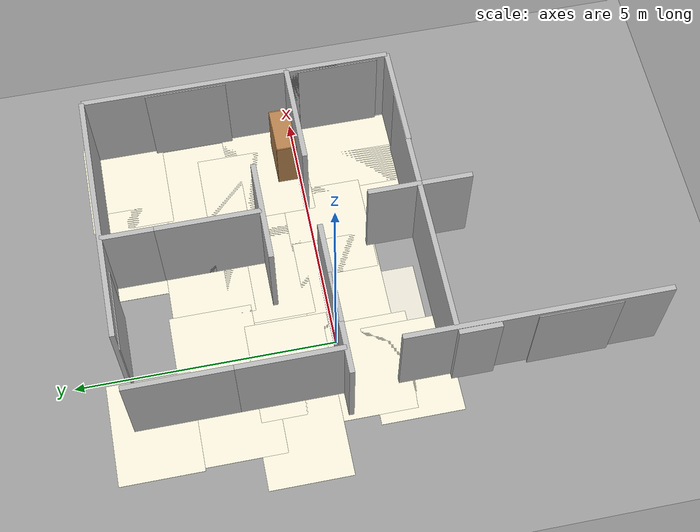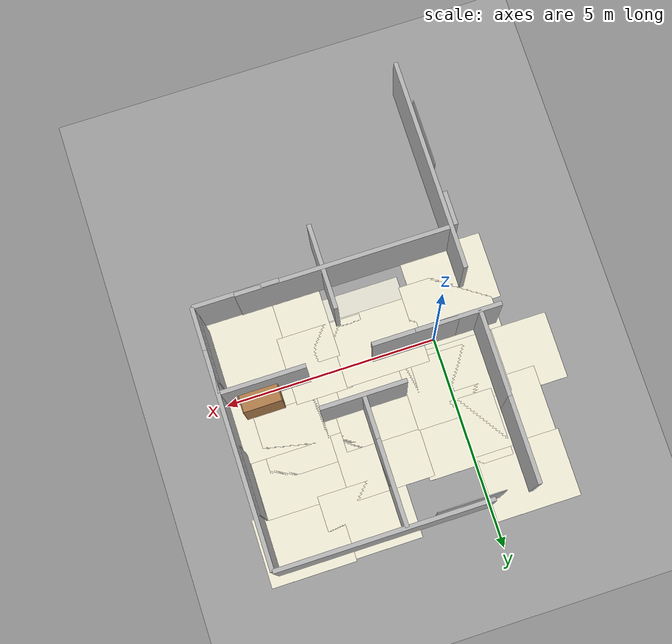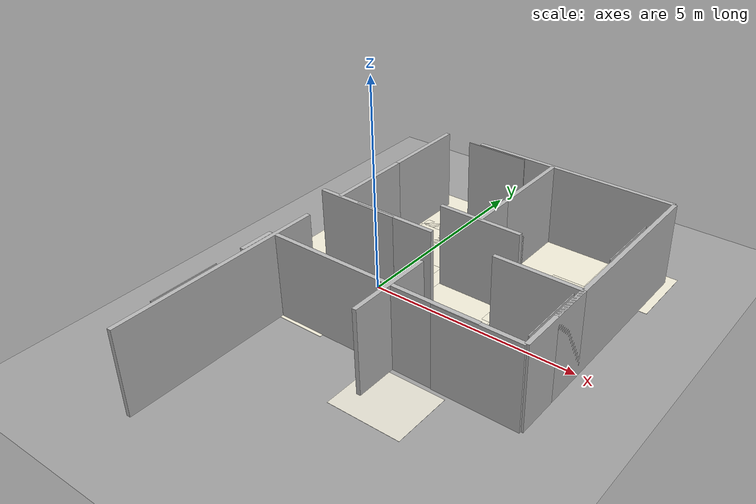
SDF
<sdf version="1.7">
 <world name="default">
  <model name="ground_plane">
   <static>1</static>
   <link name="link">
    <collision name="collision">
     <geometry><plane><normal>0 0 1</normal><size>100 100</size></plane></geometry>
     <surface>
      <contact><collide_bitmask>65535</collide_bitmask></contact>
      <friction><ode><mu>100</mu><mu2>50</mu2></ode></friction>
     </surface>
    </collision>
    <visual name="visual">
     <cast_shadows>0</cast_shadows>
     <geometry><plane><normal>0 0 1</normal><size>1 1</size></plane></geometry>
     <material>
      <script><uri>file://media/materials/scripts/gazebo.material</uri><name>Gazebo/Grey</name></script>
     </material>
    </visual>
   </link>
  </model>
  <model name="Bookshelf">
   <static>1</static>
   <link name="link">
    <inertial><mass>1</mass></inertial>
    <collision name="back">
     <pose>0 0.005 0.6 0 -0 0</pose>
     <geometry><box><size>0.9 0.01 1.2</size></box></geometry>
    </collision>
    <visual name="visual1">
     <pose>0 0.005 0.6 0 -0 0</pose>
     <geometry><box><size>0.9 0.01 1.2</size></box></geometry>
     <material>
      <diffuse>1 1 1 1</diffuse>
      <script><uri>file://media/materials/scripts/gazebo.material</uri><name>Gazebo/Wood</name></script>
      <pbr>
       <metal>
        <albedo_map>https://fuel.ignitionrobotics.org/1.0/openrobotics/models/bookshelf/3/files/bookshelf_diffuse.jpg</albedo_map>
       </metal>
      </pbr>
     </material>
    </visual>
    <collision name="left_side">
     <pose>0.45 -0.195 0.6 0 -0 0</pose>
     <geometry><box><size>0.02 0.4 1.2</size></box></geometry>
    </collision>
    <visual name="visual2">
     <pose>0.45 -0.195 0.6 0 -0 0</pose>
     <geometry><box><size>0.02 0.4 1.2</size></box></geometry>
     <material>
      <diffuse>1 1 1 1</diffuse>
      <script><uri>file://media/materials/scripts/gazebo.material</uri><name>Gazebo/Wood</name></script>
      <pbr>
       <metal>
        <albedo_map>https://fuel.ignitionrobotics.org/1.0/openrobotics/models/bookshelf/3/files/bookshelf_diffuse.jpg</albedo_map>
       </metal>
      </pbr>
     </material>
    </visual>
    <collision name="right_side">
     <pose>-0.45 -0.195 0.6 0 -0 0</pose>
     <geometry><box><size>0.02 0.4 1.2</size></box></geometry>
    </collision>
    <visual name="visual3">
     <pose>-0.45 -0.195 0.6 0 -0 0</pose>
     <geometry><box><size>0.02 0.4 1.2</size></box></geometry>
     <material>
      <diffuse>1 1 1 1</diffuse>
      <script><uri>file://media/materials/scripts/gazebo.material</uri><name>Gazebo/Wood</name></script>
      <pbr>
       <metal>
        <albedo_map>https://fuel.ignitionrobotics.org/1.0/openrobotics/models/bookshelf/3/files/bookshelf_diffuse.jpg</albedo_map>
       </metal>
      </pbr>
     </material>
    </visual>
    <collision name="bottom">
     <pose>0 -0.195 0.03 0 -0 0</pose>
     <geometry><box><size>0.88 0.4 0.06</size></box></geometry>
    </collision>
    <visual name="visual4">
     <pose>0 -0.195 0.03 0 -0 0</pose>
     <geometry><box><size>0.88 0.4 0.06</size></box></geometry>
     <material>
      <diffuse>1 1 1 1</diffuse>
      <script><uri>file://media/materials/scripts/gazebo.material</uri><name>Gazebo/Wood</name></script>
      <pbr>
       <metal>
        <albedo_map>https://fuel.ignitionrobotics.org/1.0/openrobotics/models/bookshelf/3/files/bookshelf_diffuse.jpg</albedo_map>
       </metal>
      </pbr>
     </material>
    </visual>
    <collision name="top">
     <pose>0 -0.195 1.19 0 -0 0</pose>
     <geometry><box><size>0.88 0.4 0.02</size></box></geometry>
    </collision>
    <visual name="visual5">
     <pose>0 -0.195 1.19 0 -0 0</pose>
     <geometry><box><size>0.88 0.4 0.02</size></box></geometry>
     <material>
      <diffuse>1 1 1 1</diffuse>
      <script><uri>file://media/materials/scripts/gazebo.material</uri><name>Gazebo/Wood</name></script>
      <pbr>
       <metal>
        <albedo_map>https://fuel.ignitionrobotics.org/1.0/openrobotics/models/bookshelf/3/files/bookshelf_diffuse.jpg</albedo_map>
       </metal>
      </pbr>
     </material>
    </visual>
    <collision name="low_shelf">
     <pose>0 -0.195 0.43 0 -0 0</pose>
     <geometry><box><size>0.88 0.4 0.02</size></box></geometry>
    </collision>
    <visual name="visual6">
     <pose>0 -0.195 0.43 0 -0 0</pose>
     <geometry><box><size>0.88 0.4 0.02</size></box></geometry>
     <material>
      <diffuse>1 1 1 1</diffuse>
      <script><uri>file://media/materials/scripts/gazebo.material</uri><name>Gazebo/Wood</name></script>
      <pbr>
       <metal>
        <albedo_map>https://fuel.ignitionrobotics.org/1.0/openrobotics/models/bookshelf/3/files/bookshelf_diffuse.jpg</albedo_map>
       </metal>
      </pbr>
     </material>
    </visual>
    <collision name="high_shelf">
     <pose>0 -0.195 0.8 0 -0 0</pose>
     <geometry><box><size>0.88 0.4 0.02</size></box></geometry>
    </collision>
    <visual name="visual7">
     <pose>0 -0.195 0.8 0 -0 0</pose>
     <geometry><box><size>0.88 0.4 0.02</size></box></geometry>
     <material>
      <diffuse>1 1 1 1</diffuse>
      <script><uri>file://media/materials/scripts/gazebo.material</uri><name>Gazebo/Wood</name></script>
      <pbr>
       <metal>
        <albedo_map>https://fuel.ignitionrobotics.org/1.0/openrobotics/models/bookshelf/3/files/bookshelf_diffuse.jpg</albedo_map>
       </metal>
      </pbr>
     </material>
    </visual>
   </link>
   <pose>4.1858 0.440945 0 0 -0 0</pose>
  </model>
  <model name="door_08x2m_0">
   <link name="link">
    <visual name="visual">
     <geometry><box><size>0.1 0.8 2</size></box></geometry>
     <material>
      <script>
       <uri>https://fuel.ignitionrobotics.org/1.0/makerspet/models/door_08x2m/1/files/material/script</uri>
       <uri>https://fuel.ignitionrobotics.org/1.0/makerspet/models/door_08x2m/1/files/material/textures</uri>
       <name>Custom/door_08x2m</name>
      </script>
     </material>
    </visual>
   </link>
   <static>1</static>
   <pose>-1.10373 -2.39145 1 0 -0 0</pose>
  </model>
  <model name="living_room"><static>0</static><pose>-1.83596 1.40391 0 0 -0 0</pose></model>
  <model name="rug_ivory_2m_0">
   <link name="link">
    <visual name="visual">
     <geometry><box><size>1.6 2 0.005</size></box></geometry>
     <material>
      <script>
       <uri>https://fuel.ignitionrobotics.org/1.0/makerspet/models/rug_ivory_2m/1/files/material/script</uri>
       <uri>https://fuel.ignitionrobotics.org/1.0/makerspet/models/rug_ivory_2m/1/files/material/textures</uri>
       <name>Custom/rug_ivory_2m</name>
      </script>
     </material>
    </visual>
   </link>
   <static>1</static>
   <pose>1.70807 1.06148 0 0 -0 1.5707</pose>
  </model>
  <model name="window_curtains_0">
   <link name="link">
    <visual name="visual">
     <geometry><box><size>0.02 1.5676 2</size></box></geometry>
     <material>
      <script>
       <uri>https://fuel.ignitionrobotics.org/1.0/makerspet/models/window_curtains/1/files/material/script</uri>
       <uri>https://fuel.ignitionrobotics.org/1.0/makerspet/models/window_curtains/1/files/material/textures</uri>
       <name>Custom/window_curtains</name>
      </script>
      <emissive>0 1 0 1</emissive>
     </material>
    </visual>
   </link>
   <static>1</static>
   <pose>4.9 -1 1 0 -0 0</pose>
  </model>
  <model name="rug_ivory_2m_0_clone">
   <link name="link">
    <visual name="visual">
     <geometry><box><size>1.6 2 0.005</size></box></geometry>
     <material>
      <script>
       <uri>https://fuel.ignitionrobotics.org/1.0/makerspet/models/rug_ivory_2m/1/files/material/script</uri>
       <uri>https://fuel.ignitionrobotics.org/1.0/makerspet/models/rug_ivory_2m/1/files/material/textures</uri>
       <name>Custom/rug_ivory_2m</name>
      </script>
     </material>
    </visual>
   </link>
   <static>1</static>
   <pose>1.25235 -0.361074 0 0 -0 1.5707</pose>
  </model>
  <model name="rug_ivory_2m_0_clone_0">
   <link name="link">
    <visual name="visual">
     <geometry><box><size>1.6 2 0.005</size></box></geometry>
     <material>
      <script>
       <uri>https://fuel.ignitionrobotics.org/1.0/makerspet/models/rug_ivory_2m/1/files/material/script</uri>
       <uri>https://fuel.ignitionrobotics.org/1.0/makerspet/models/rug_ivory_2m/1/files/material/textures</uri>
       <name>Custom/rug_ivory_2m</name>
      </script>
     </material>
    </visual>
   </link>
   <static>1</static>
   <pose>-0.334451 0.870677 0 0 -0 1.5707</pose>
  </model>
  <model name="rug_ivory_2m_0_clone_1">
   <link name="link">
    <visual name="visual">
     <geometry><box><size>1.6 2 0.005</size></box></geometry>
     <material>
      <script>
       <uri>https://fuel.ignitionrobotics.org/1.0/makerspet/models/rug_ivory_2m/1/files/material/script</uri>
       <uri>https://fuel.ignitionrobotics.org/1.0/makerspet/models/rug_ivory_2m/1/files/material/textures</uri>
       <name>Custom/rug_ivory_2m</name>
      </script>
     </material>
    </visual>
   </link>
   <static>1</static>
   <pose>-0.600896 -0.634666 0 0 -0 1.5707</pose>
  </model>
  <model name="rug_ivory_2m_0_clone_6">
   <link name="link">
    <visual name="visual">
     <geometry><box><size>1.6 2 0.005</size></box></geometry>
     <material>
      <script>
       <uri>https://fuel.ignitionrobotics.org/1.0/makerspet/models/rug_ivory_2m/1/files/material/script</uri>
       <uri>https://fuel.ignitionrobotics.org/1.0/makerspet/models/rug_ivory_2m/1/files/material/textures</uri>
       <name>Custom/rug_ivory_2m</name>
      </script>
     </material>
    </visual>
   </link>
   <static>1</static>
   <pose>1.21602 -1.2828 -1.79833 0 -0 1.5707</pose>
  </model>
  <model name="rug_ivory_2m_0_clone_7">
   <link name="link">
    <visual name="visual">
     <geometry><box><size>1.6 2 0.005</size></box></geometry>
     <material>
      <script>
       <uri>https://fuel.ignitionrobotics.org/1.0/makerspet/models/rug_ivory_2m/1/files/material/script</uri>
       <uri>https://fuel.ignitionrobotics.org/1.0/makerspet/models/rug_ivory_2m/1/files/material/textures</uri>
       <name>Custom/rug_ivory_2m</name>
      </script>
     </material>
    </visual>
   </link>
   <static>1</static>
   <pose>-0.005314 1.09168 0 0 -0 1.5707</pose>
  </model>
  <model name="rug_ivory_2m_0_clone_8">
   <link name="link">
    <visual name="visual">
     <geometry><box><size>1.6 2 0.005</size></box></geometry>
     <material>
      <script>
       <uri>https://fuel.ignitionrobotics.org/1.0/makerspet/models/rug_ivory_2m/1/files/material/script</uri>
       <uri>https://fuel.ignitionrobotics.org/1.0/makerspet/models/rug_ivory_2m/1/files/material/textures</uri>
       <name>Custom/rug_ivory_2m</name>
      </script>
     </material>
    </visual>
   </link>
   <static>1</static>
   <pose>4.24072 3.46972 0 0 -0 1.5707</pose>
  </model>
  <model name="rug_ivory_2m_0_clone_13">
   <link name="link">
    <visual name="visual">
     <geometry><box><size>1.6 2 0.005</size></box></geometry>
     <material>
      <script>
       <uri>https://fuel.ignitionrobotics.org/1.0/makerspet/models/rug_ivory_2m/1/files/material/script</uri>
       <uri>https://fuel.ignitionrobotics.org/1.0/makerspet/models/rug_ivory_2m/1/files/material/textures</uri>
       <name>Custom/rug_ivory_2m</name>
      </script>
     </material>
    </visual>
   </link>
   <static>1</static>
   <pose>2.46768 -0.335244 0 0 -0 1.5707</pose>
  </model>
  <model name="rug_ivory_2m_0_clone_14">
   <link name="link">
    <visual name="visual">
     <geometry><box><size>1.6 2 0.005</size></box></geometry>
     <material>
      <script>
       <uri>https://fuel.ignitionrobotics.org/1.0/makerspet/models/rug_ivory_2m/1/files/material/script</uri>
       <uri>https://fuel.ignitionrobotics.org/1.0/makerspet/models/rug_ivory_2m/1/files/material/textures</uri>
       <name>Custom/rug_ivory_2m</name>
      </script>
     </material>
    </visual>
   </link>
   <static>1</static>
   <pose>2.66089 3.42084 0 0 -0 1.5707</pose>
  </model>
  <model name="rug_ivory_2m_0_clone_15">
   <link name="link">
    <visual name="visual">
     <geometry><box><size>1.6 2 0.005</size></box></geometry>
     <material>
      <script>
       <uri>https://fuel.ignitionrobotics.org/1.0/makerspet/models/rug_ivory_2m/1/files/material/script</uri>
       <uri>https://fuel.ignitionrobotics.org/1.0/makerspet/models/rug_ivory_2m/1/files/material/textures</uri>
       <name>Custom/rug_ivory_2m</name>
      </script>
     </material>
    </visual>
   </link>
   <static>1</static>
   <pose>1.9687 2.18559 0 0 -0 1.5707</pose>
  </model>
  <model name="rug_ivory_2m_0_clone_17">
   <link name="link">
    <visual name="visual">
     <geometry><box><size>1.6 2 0.005</size></box></geometry>
     <material>
      <script>
       <uri>https://fuel.ignitionrobotics.org/1.0/makerspet/models/rug_ivory_2m/1/files/material/script</uri>
       <uri>https://fuel.ignitionrobotics.org/1.0/makerspet/models/rug_ivory_2m/1/files/material/textures</uri>
       <name>Custom/rug_ivory_2m</name>
      </script>
     </material>
    </visual>
   </link>
   <static>1</static>
   <pose>4.12195 -0.965159 0 0 -0 0</pose>
  </model>
  <model name="rug_ivory_2m_0_clone_18">
   <link name="link">
    <visual name="visual">
     <geometry><box><size>1.6 2 0.005</size></box></geometry>
     <material>
      <script>
       <uri>https://fuel.ignitionrobotics.org/1.0/makerspet/models/rug_ivory_2m/1/files/material/script</uri>
       <uri>https://fuel.ignitionrobotics.org/1.0/makerspet/models/rug_ivory_2m/1/files/material/textures</uri>
       <name>Custom/rug_ivory_2m</name>
      </script>
     </material>
    </visual>
   </link>
   <static>1</static>
   <pose>-1.00252 2.07981 0 0 -0 1.5707</pose>
  </model>
  <model name="rug_ivory_2m_0_clone_19">
   <link name="link">
    <visual name="visual">
     <geometry><box><size>1.6 2 0.005</size></box></geometry>
     <material>
      <script>
       <uri>https://fuel.ignitionrobotics.org/1.0/makerspet/models/rug_ivory_2m/1/files/material/script</uri>
       <uri>https://fuel.ignitionrobotics.org/1.0/makerspet/models/rug_ivory_2m/1/files/material/textures</uri>
       <name>Custom/rug_ivory_2m</name>
      </script>
     </material>
    </visual>
   </link>
   <static>1</static>
   <pose>-1.0564 3.62413 0 0 -0 1.5707</pose>
  </model>
  <model name="rug_ivory_2m_0_clone_28">
   <link name="link">
    <visual name="visual">
     <geometry><box><size>1.6 2 0.005</size></box></geometry>
     <material>
      <script>
       <uri>https://fuel.ignitionrobotics.org/1.0/makerspet/models/rug_ivory_2m/1/files/material/script</uri>
       <uri>https://fuel.ignitionrobotics.org/1.0/makerspet/models/rug_ivory_2m/1/files/material/textures</uri>
       <name>Custom/rug_ivory_2m</name>
      </script>
     </material>
    </visual>
   </link>
   <static>1</static>
   <pose>3.51485 1.20126 0 0 -0 1.5707</pose>
  </model>
  <model name="rug_ivory_2m_0_clone_29">
   <link name="link">
    <visual name="visual">
     <geometry><box><size>1.6 2 0.005</size></box></geometry>
     <material>
      <script>
       <uri>https://fuel.ignitionrobotics.org/1.0/makerspet/models/rug_ivory_2m/1/files/material/script</uri>
       <uri>https://fuel.ignitionrobotics.org/1.0/makerspet/models/rug_ivory_2m/1/files/material/textures</uri>
       <name>Custom/rug_ivory_2m</name>
      </script>
     </material>
    </visual>
   </link>
   <static>1</static>
   <pose>3.1851 -1.13229 0 0 -0 1.5707</pose>
  </model>
  <model name="window_curtains_0_clone_0">
   <link name="link">
    <visual name="visual">
     <geometry><box><size>0.02 1.5676 2</size></box></geometry>
     <material>
      <script>
       <uri>https://fuel.ignitionrobotics.org/1.0/makerspet/models/window_curtains/1/files/material/script</uri>
       <uri>https://fuel.ignitionrobotics.org/1.0/makerspet/models/window_curtains/1/files/material/textures</uri>
       <name>Custom/window_curtains</name>
      </script>
      <emissive>0 1 0 1</emissive>
     </material>
    </visual>
   </link>
   <static>1</static>
   <pose>4.9 2 1 0 -0 0</pose>
  </model>
  <model name="window_curtains_0_clone_1">
   <link name="link">
    <visual name="visual">
     <geometry><box><size>0.02 1.5676 2</size></box></geometry>
     <material>
      <script>
       <uri>https://fuel.ignitionrobotics.org/1.0/makerspet/models/window_curtains/1/files/material/script</uri>
       <uri>https://fuel.ignitionrobotics.org/1.0/makerspet/models/window_curtains/1/files/material/textures</uri>
       <name>Custom/window_curtains</name>
      </script>
      <emissive>0 1 0 1</emissive>
     </material>
    </visual>
   </link>
   <static>1</static>
   <pose>-1.1 -4.24108 1 0 -0 0</pose>
  </model>
  <model name="rug_ivory_2m_0_clone_8_clone">
   <link name="link">
    <visual name="visual">
     <geometry><box><size>1.6 2 0.005</size></box></geometry>
     <material>
      <script>
       <uri>https://fuel.ignitionrobotics.org/1.0/makerspet/models/rug_ivory_2m/1/files/material/script</uri>
       <uri>https://fuel.ignitionrobotics.org/1.0/makerspet/models/rug_ivory_2m/1/files/material/textures</uri>
       <name>Custom/rug_ivory_2m</name>
      </script>
     </material>
    </visual>
   </link>
   <static>1</static>
   <pose>0.108778 2.26842 0 0 -0 1.5707</pose>
  </model>
  <model name="rug_ivory_2m_0_clone_8_clone_0">
   <link name="link">
    <visual name="visual">
     <geometry><box><size>1.6 2 0.005</size></box></geometry>
     <material>
      <script>
       <uri>https://fuel.ignitionrobotics.org/1.0/makerspet/models/rug_ivory_2m/1/files/material/script</uri>
       <uri>https://fuel.ignitionrobotics.org/1.0/makerspet/models/rug_ivory_2m/1/files/material/textures</uri>
       <name>Custom/rug_ivory_2m</name>
      </script>
     </material>
    </visual>
   </link>
   <static>1</static>
   <pose>3.87797 1.98884 0 0 -0 1.5707</pose>
  </model>
  <model name="rug_ivory_2m_0_clone_8_clone_1">
   <link name="link">
    <visual name="visual">
     <geometry><box><size>1.6 2 0.005</size></box></geometry>
     <material>
      <script>
       <uri>https://fuel.ignitionrobotics.org/1.0/makerspet/models/rug_ivory_2m/1/files/material/script</uri>
       <uri>https://fuel.ignitionrobotics.org/1.0/makerspet/models/rug_ivory_2m/1/files/material/textures</uri>
       <name>Custom/rug_ivory_2m</name>
      </script>
     </material>
    </visual>
   </link>
   <static>1</static>
   <pose>3.99334 0.636383 0 0 -0 1.5707</pose>
  </model>
  <model name="rug_ivory_2m_0_clone_8_clone_2">
   <link name="link">
    <visual name="visual">
     <geometry><box><size>1.6 2 0.005</size></box></geometry>
     <material>
      <script>
       <uri>https://fuel.ignitionrobotics.org/1.0/makerspet/models/rug_ivory_2m/1/files/material/script</uri>
       <uri>https://fuel.ignitionrobotics.org/1.0/makerspet/models/rug_ivory_2m/1/files/material/textures</uri>
       <name>Custom/rug_ivory_2m</name>
      </script>
     </material>
    </visual>
   </link>
   <static>1</static>
   <pose>-0.806878 -1.31075 0 0 -0 1.5707</pose>
  </model>
  <model name="rug_ivory_2m_0_clone_8_clone_4">
   <link name="link">
    <visual name="visual">
     <geometry><box><size>1.6 2 0.005</size></box></geometry>
     <material>
      <script>
       <uri>https://fuel.ignitionrobotics.org/1.0/makerspet/models/rug_ivory_2m/1/files/material/script</uri>
       <uri>https://fuel.ignitionrobotics.org/1.0/makerspet/models/rug_ivory_2m/1/files/material/textures</uri>
       <name>Custom/rug_ivory_2m</name>
      </script>
     </material>
    </visual>
   </link>
   <static>1</static>
   <pose>-1.66137 0.965278 0 0 -0 1.5707</pose>
  </model>
  <model name="room_wall_2x5_1_clone_clone">
   <link name="link">
    <visual name="visual">
     <geometry><box><size>0.1 5 2</size></box></geometry>
     <material>
      <script>
       <uri>https://fuel.ignitionrobotics.org/1.0/makerspet/models/room_wall_2x5m/1/files/material/script</uri>
       <uri>https://fuel.ignitionrobotics.org/1.0/makerspet/models/room_wall_2x5m/1/files/material/textures</uri>
       <name>Custom/room_wall_2x5</name>
      </script>
     </material>
    </visual>
    <collision name="collision"><geometry><box><size>0.1 5 2</size></box></geometry></collision>
   </link>
   <static>1</static>
   <pose>1.53884 -1.98455 1 0 -0 1.5707</pose>
  </model>
  <model name="room_wall_2x5_1_clone_clone_clone_clone">
   <link name="link">
    <visual name="visual">
     <geometry><box><size>0.1 5 2</size></box></geometry>
     <material>
      <script>
       <uri>https://fuel.ignitionrobotics.org/1.0/makerspet/models/room_wall_2x5m/1/files/material/script</uri>
       <uri>https://fuel.ignitionrobotics.org/1.0/makerspet/models/room_wall_2x5m/1/files/material/textures</uri>
       <name>Custom/room_wall_2x5</name>
      </script>
     </material>
    </visual>
    <collision name="collision"><geometry><box><size>0.1 5 2</size></box></geometry></collision>
   </link>
   <static>1</static>
   <pose>-1 -3.5 1 0 -0 0</pose>
  </model>
  <model name="room_wall_2x2_clone_0_clone_clone_clone_0_clone_clone_0">
   <link name="link">
    <visual name="visual">
     <geometry><box><size>0.1 2 2</size></box></geometry>
     <material>
      <script>
       <uri>https://fuel.ignitionrobotics.org/1.0/makerspet/models/room_wall_2x5m/1/files/material/script</uri>
       <uri>https://fuel.ignitionrobotics.org/1.0/makerspet/models/room_wall_2x5m/1/files/material/textures</uri>
       <name>Custom/room_wall_2x5</name>
      </script>
     </material>
    </visual>
    <collision name="collision"><geometry><box><size>0.1 2 2</size></box></geometry></collision>
   </link>
   <static>1</static>
   <pose>-0.5 0 1 0 -0 1.5707</pose>
  </model>
  <model name="room_wall_2x2_clone_0_clone_clone_clone_0_clone_clone_1">
   <link name="link">
    <visual name="visual">
     <geometry><box><size>0.1 2 2</size></box></geometry>
     <material>
      <script>
       <uri>https://fuel.ignitionrobotics.org/1.0/makerspet/models/room_wall_2x5m/1/files/material/script</uri>
       <uri>https://fuel.ignitionrobotics.org/1.0/makerspet/models/room_wall_2x5m/1/files/material/textures</uri>
       <name>Custom/room_wall_2x5</name>
      </script>
     </material>
    </visual>
    <collision name="collision"><geometry><box><size>0.1 2 2</size></box></geometry></collision>
   </link>
   <static>1</static>
   <pose>0.5 0 1 0 -0 1.5707</pose>
  </model>
  <model name="room_wall_2x2_clone_0_clone_clone_clone_0_clone_clone_2">
   <link name="link">
    <visual name="visual">
     <geometry><box><size>0.1 2 2</size></box></geometry>
     <material>
      <script>
       <uri>https://fuel.ignitionrobotics.org/1.0/makerspet/models/room_wall_2x5m/1/files/material/script</uri>
       <uri>https://fuel.ignitionrobotics.org/1.0/makerspet/models/room_wall_2x5m/1/files/material/textures</uri>
       <name>Custom/room_wall_2x5</name>
      </script>
     </material>
    </visual>
    <collision name="collision"><geometry><box><size>0.1 2 2</size></box></geometry></collision>
   </link>
   <static>1</static>
   <pose>4 0 1 0 -0 1.5707</pose>
  </model>
  <model name="room_wall_2x2_clone_0_clone_clone_clone_0_clone_2">
   <link name="link">
    <visual name="visual">
     <geometry><box><size>0.1 2 2</size></box></geometry>
     <material>
      <script>
       <uri>https://fuel.ignitionrobotics.org/1.0/makerspet/models/room_wall_2x5m/1/files/material/script</uri>
       <uri>https://fuel.ignitionrobotics.org/1.0/makerspet/models/room_wall_2x5m/1/files/material/textures</uri>
       <name>Custom/room_wall_2x5</name>
      </script>
     </material>
    </visual>
    <collision name="collision"><geometry><box><size>0.1 2 2</size></box></geometry></collision>
   </link>
   <static>1</static>
   <pose>2 -2 1 0 -0 0</pose>
  </model>
  <model name="room_wall_2x2_clone_0_clone_clone_clone_0_clone_3">
   <link name="link">
    <visual name="visual">
     <geometry><box><size>0.1 2 2</size></box></geometry>
     <material>
      <script>
       <uri>https://fuel.ignitionrobotics.org/1.0/makerspet/models/room_wall_2x5m/1/files/material/script</uri>
       <uri>https://fuel.ignitionrobotics.org/1.0/makerspet/models/room_wall_2x5m/1/files/material/textures</uri>
       <name>Custom/room_wall_2x5</name>
      </script>
     </material>
    </visual>
    <collision name="collision"><geometry><box><size>0.1 2 2</size></box></geometry></collision>
   </link>
   <static>1</static>
   <pose>2 3 1 0 -0 0</pose>
  </model>
  <model name="room_wall_2x2_clone_0_clone_clone_clone_0_clone_4">
   <link name="link">
    <visual name="visual">
     <geometry><box><size>0.1 2 2</size></box></geometry>
     <material>
      <script>
       <uri>https://fuel.ignitionrobotics.org/1.0/makerspet/models/room_wall_2x5m/1/files/material/script</uri>
       <uri>https://fuel.ignitionrobotics.org/1.0/makerspet/models/room_wall_2x5m/1/files/material/textures</uri>
       <name>Custom/room_wall_2x5</name>
      </script>
     </material>
    </visual>
    <collision name="collision"><geometry><box><size>0.1 2 2</size></box></geometry></collision>
   </link>
   <static>1</static>
   <pose>-1 1 1 0 -0 0</pose>
  </model>
  <model name="room_wall_2x2_clone_0_clone_clone_clone_0_clone_5">
   <link name="link">
    <visual name="visual">
     <geometry><box><size>0.1 2 2</size></box></geometry>
     <material>
      <script>
       <uri>https://fuel.ignitionrobotics.org/1.0/makerspet/models/room_wall_2x5m/1/files/material/script</uri>
       <uri>https://fuel.ignitionrobotics.org/1.0/makerspet/models/room_wall_2x5m/1/files/material/textures</uri>
       <name>Custom/room_wall_2x5</name>
      </script>
     </material>
    </visual>
    <collision name="collision"><geometry><box><size>0.1 2 2</size></box></geometry></collision>
   </link>
   <static>1</static>
   <pose>-1 3 1 0 -0 0</pose>
  </model>
  <model name="room_wall_2x2_clone_0_clone_clone_clone_0_clone_6">
   <link name="link">
    <visual name="visual">
     <geometry><box><size>0.1 2 2</size></box></geometry>
     <material>
      <script>
       <uri>https://fuel.ignitionrobotics.org/1.0/makerspet/models/room_wall_2x5m/1/files/material/script</uri>
       <uri>https://fuel.ignitionrobotics.org/1.0/makerspet/models/room_wall_2x5m/1/files/material/textures</uri>
       <name>Custom/room_wall_2x5</name>
      </script>
     </material>
    </visual>
    <collision name="collision"><geometry><box><size>0.1 2 2</size></box></geometry></collision>
   </link>
   <static>1</static>
   <pose>5 -1 1 0 -0 0</pose>
  </model>
  <model name="room_wall_2x2_clone_0_clone_clone_clone_0_clone_clone_2_clone">
   <link name="link">
    <visual name="visual">
     <geometry><box><size>0.1 2 2</size></box></geometry>
     <material>
      <script>
       <uri>https://fuel.ignitionrobotics.org/1.0/makerspet/models/room_wall_2x5m/1/files/material/script</uri>
       <uri>https://fuel.ignitionrobotics.org/1.0/makerspet/models/room_wall_2x5m/1/files/material/textures</uri>
       <name>Custom/room_wall_2x5</name>
      </script>
     </material>
    </visual>
    <collision name="collision"><geometry><box><size>0.1 2 2</size></box></geometry></collision>
   </link>
   <static>1</static>
   <pose>4 -2 1 0 -0 1.5707</pose>
  </model>
  <model name="room_wall_2x5_1_clone_clone_clone_clone_1">
   <link name="link">
    <visual name="visual">
     <geometry><box><size>0.1 5 2</size></box></geometry>
     <material>
      <script>
       <uri>https://fuel.ignitionrobotics.org/1.0/makerspet/models/room_wall_2x5m/1/files/material/script</uri>
       <uri>https://fuel.ignitionrobotics.org/1.0/makerspet/models/room_wall_2x5m/1/files/material/textures</uri>
       <name>Custom/room_wall_2x5</name>
      </script>
     </material>
    </visual>
    <collision name="collision"><geometry><box><size>0.1 5 2</size></box></geometry></collision>
   </link>
   <static>1</static>
   <pose>2.5 4 1 0 -0 1.5707</pose>
  </model>
  <model name="room_wall_2x5_1_clone_clone_clone_clone_2">
   <link name="link">
    <visual name="visual">
     <geometry><box><size>0.1 5 2</size></box></geometry>
     <material>
      <script>
       <uri>https://fuel.ignitionrobotics.org/1.0/makerspet/models/room_wall_2x5m/1/files/material/script</uri>
       <uri>https://fuel.ignitionrobotics.org/1.0/makerspet/models/room_wall_2x5m/1/files/material/textures</uri>
       <name>Custom/room_wall_2x5</name>
      </script>
     </material>
    </visual>
    <collision name="collision"><geometry><box><size>0.1 5 2</size></box></geometry></collision>
   </link>
   <static>1</static>
   <pose>5 1.5 1 0 -0 0</pose>
  </model>
  <model name="window_curtains_0_clone_clone">
   <link name="link">
    <visual name="visual">
     <geometry><box><size>0.02 1.5676 2</size></box></geometry>
     <material>
      <script>
       <uri>https://fuel.ignitionrobotics.org/1.0/makerspet/models/window_curtains/1/files/material/script</uri>
       <uri>https://fuel.ignitionrobotics.org/1.0/makerspet/models/window_curtains/1/files/material/textures</uri>
       <name>Custom/window_curtains</name>
      </script>
      <emissive>0 1 0 1</emissive>
     </material>
    </visual>
   </link>
   <static>1</static>
   <pose>0.5 3.9 1 0 -0 1.5707</pose>
  </model>
  <model name="room_wall_2x2_clone_0_clone_clone_clone_0_clone_clone_1_clone">
   <link name="link">
    <visual name="visual">
     <geometry><box><size>0.1 2 2</size></box></geometry>
     <material>
      <script>
       <uri>https://fuel.ignitionrobotics.org/1.0/makerspet/models/room_wall_2x5m/1/files/material/script</uri>
       <uri>https://fuel.ignitionrobotics.org/1.0/makerspet/models/room_wall_2x5m/1/files/material/textures</uri>
       <name>Custom/room_wall_2x5</name>
      </script>
     </material>
    </visual>
    <collision name="collision"><geometry><box><size>0.1 2 2</size></box></geometry></collision>
   </link>
   <static>1</static>
   <pose>2.0082 0.988899 1 0 -0 1.5707</pose>
  </model>
  <model name="room_wall_2x2_clone_0_clone_clone_clone_0_clone_3_clone">
   <link name="link">
    <visual name="visual">
     <geometry><box><size>0.1 2 2</size></box></geometry>
     <material>
      <script>
       <uri>https://fuel.ignitionrobotics.org/1.0/makerspet/models/room_wall_2x5m/1/files/material/script</uri>
       <uri>https://fuel.ignitionrobotics.org/1.0/makerspet/models/room_wall_2x5m/1/files/material/textures</uri>
       <name>Custom/room_wall_2x5</name>
      </script>
     </material>
    </visual>
    <collision name="collision"><geometry><box><size>0.1 2 2</size></box></geometry></collision>
   </link>
   <static>1</static>
   <pose>2 2 1 0 -0 0</pose>
  </model>
 </world>
</sdf>
